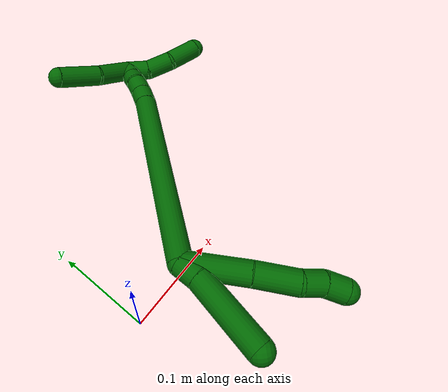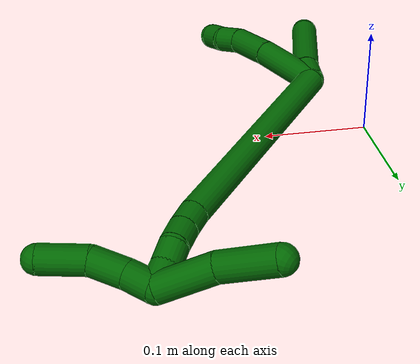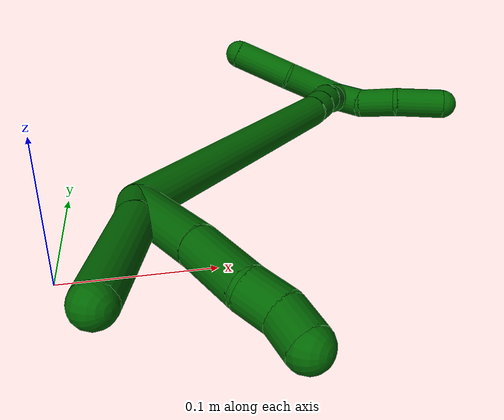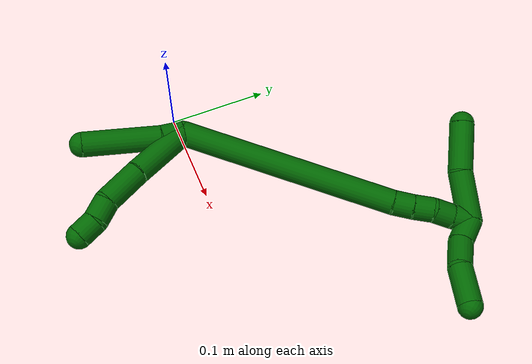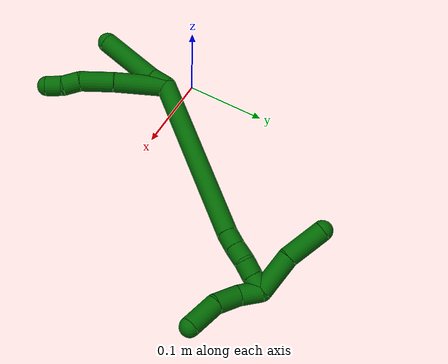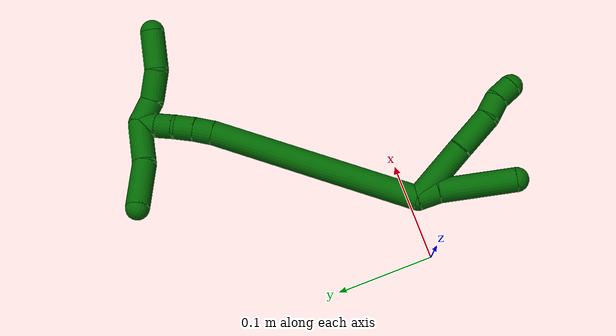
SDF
<sdf version="1.7">
 <world name="default">
  <model name="photoneo_s_sensor">
   <static>1</static>
   <pose>0 0 2 1.57079 1.57079 3.14159</pose>
   <link name="link">
    <inertial><mass>0.1</mass></inertial>
    <sensor name="sensor" type="depth">
     <update_rate>30</update_rate>
     <camera>
      <horizontal_fov>1.22</horizontal_fov>
      <image><width>1920</width><height>1200</height><format>B8G8R8</format></image>
      <clip><near>0.1</near><far>4</far></clip>
      <depth_camera><output>points</output></depth_camera>
     </camera>
     <plugin name="camera_plugin" filename="libgazebo_ros_depth_camera.so">
      <baseline>0.2</baseline>
      <alwaysOn>1</alwaysOn>
      <updateRate>0.0</updateRate>
      <cameraName>camera_ir</cameraName>
      <imageTopicName>/camera/color/image_raw</imageTopicName>
      <cameraInfoTopicName>/camera/color/camera_info</cameraInfoTopicName>
      <depthImageTopicName>/camera/depth/image_raw</depthImageTopicName>
      <depthImageCameraInfoTopicName>/camera/depth/camera_info</depthImageCameraInfoTopicName>
      <pointCloudTopicName>/camera/depth/points</pointCloudTopicName>
      <frameName>fr_optical</frameName>
      <pointCloudCutoff>0.1</pointCloudCutoff>
      <pointCloudCutoffMax>2.0</pointCloudCutoffMax>
      <distortionK1>0</distortionK1>
      <distortionK2>0</distortionK2>
      <distortionK3>0</distortionK3>
      <distortionT1>0</distortionT1>
      <distortionT2>0</distortionT2>
      <CxPrime>0</CxPrime>
      <Cx>0</Cx>
      <Cy>0</Cy>
      <focalLength>0</focalLength>
      <hackBaseline>0</hackBaseline>
     </plugin>
    </sensor>
   </link>
  </model>
  <model name="bin">
   <static>1</static>
   <link name="bottom">
    <collision name="collision-bottom">
     <pose>0 0 -0.01 0 -0 0</pose>
     <geometry><box><size>0.8 0.6 0.02</size></box></geometry>
     <surface>
      <friction><ode><mu>100</mu><mu2>100</mu2></ode></friction>
      <contact><collide_bitmask>65535</collide_bitmask></contact>
     </surface>
    </collision>
   </link>
   <link name="west_wall">
    <collision name="collision-west_wall">
     <pose>-0.41 0 0.1 0 -0 0</pose>
     <geometry><box><size>0.02 0.6 0.2</size></box></geometry>
     <surface>
      <friction><ode><mu>100</mu><mu2>100</mu2></ode></friction>
      <contact><collide_bitmask>65535</collide_bitmask></contact>
     </surface>
    </collision>
   </link>
   <link name="east_wall">
    <collision name="collision-east_wall">
     <pose>0.41 0 0.1 0 -0 0</pose>
     <geometry><box><size>0.02 0.6 0.2</size></box></geometry>
     <surface>
      <friction><ode><mu>100</mu><mu2>100</mu2></ode></friction>
      <contact><collide_bitmask>65535</collide_bitmask></contact>
     </surface>
    </collision>
   </link>
   <link name="south_wall">
    <collision name="collision-south_wall">
     <pose>0 -0.31 0.1 0 -0 0</pose>
     <geometry><box><size>0.8 0.02 0.2</size></box></geometry>
     <surface>
      <friction><ode><mu>100</mu><mu2>100</mu2></ode></friction>
      <contact><collide_bitmask>65535</collide_bitmask></contact>
     </surface>
    </collision>
   </link>
   <link name="north_wall">
    <collision name="collision-north_wall">
     <pose>0 0.31 0.1 0 -0 0</pose>
     <geometry><box><size>0.8 0.02 0.2</size></box></geometry>
     <surface>
      <friction><ode><mu>100</mu><mu2>100</mu2></ode></friction>
      <contact><collide_bitmask>65535</collide_bitmask></contact>
     </surface>
    </collision>
   </link>
  </model>
  <model name="6">
   <static>0</static>
   <link name="6">
    <collision name="collision-cylinder-e_1_2_8">
     <pose>-0.004176 -0.007581 0.031551 0.235822 -0.127997 -0.015183</pose>
     <geometry><cylinder><radius>0.0125</radius><length>0.065433</length></cylinder></geometry>
     <surface>
      <friction><ode><mu>1.16</mu><mu2>1.16</mu2><slip1>0</slip1><slip2>0</slip2></ode></friction>
      <contact><ode><kp>1e+06</kp><kd>1</kd><max_vel>0</max_vel><min_depth>0.001</min_depth></ode></contact>
     </surface>
    </collision>
    <visual name="visual-cylinder-e_1_2_8">
     <pose>-0.004176 -0.007581 0.031551 0.235822 -0.127997 -0.015183</pose>
     <geometry><cylinder><radius>0.0125</radius><length>0.065433</length></cylinder></geometry>
     <material><ambient>0 0.392157 0.003922 1</ambient></material>
    </visual>
    <collision name="collision-cylinder-e_2_8_9">
     <pose>-0.009587 -0.021378 0.083057 0.301934 -0.058994 -0.008977</pose>
     <geometry><cylinder><radius>0.0125</radius><length>0.041874</length></cylinder></geometry>
     <surface>
      <friction><ode><mu>1.16</mu><mu2>1.16</mu2><slip1>0</slip1><slip2>0</slip2></ode></friction>
      <contact><ode><kp>1e+06</kp><kd>1</kd><max_vel>0</max_vel><min_depth>0.001</min_depth></ode></contact>
     </surface>
    </collision>
    <visual name="visual-cylinder-e_2_8_9">
     <pose>-0.009587 -0.021378 0.083057 0.301934 -0.058994 -0.008977</pose>
     <geometry><cylinder><radius>0.0125</radius><length>0.041874</length></cylinder></geometry>
     <material><ambient>0 0.392157 0.003922 1</ambient></material>
    </visual>
    <collision name="collision-cylinder-e_3_9_10">
     <pose>-0.008432 -0.029932 0.113449 0.22041 0.219822 0.024421</pose>
     <geometry><cylinder><radius>0.0125</radius><length>0.021919</length></cylinder></geometry>
     <surface>
      <friction><ode><mu>1.16</mu><mu2>1.16</mu2><slip1>0</slip1><slip2>0</slip2></ode></friction>
      <contact><ode><kp>1e+06</kp><kd>1</kd><max_vel>0</max_vel><min_depth>0.001</min_depth></ode></contact>
     </surface>
    </collision>
    <visual name="visual-cylinder-e_3_9_10">
     <pose>-0.008432 -0.029932 0.113449 0.22041 0.219822 0.024421</pose>
     <geometry><cylinder><radius>0.0125</radius><length>0.021919</length></cylinder></geometry>
     <material><ambient>0 0.392157 0.003922 1</ambient></material>
    </visual>
    <collision name="collision-cylinder-e_4_10_6">
     <pose>-0.005834 -0.037172 0.133041 0.491649 0.020042 0.005029</pose>
     <geometry><cylinder><radius>0.0125</radius><length>0.020774</length></cylinder></geometry>
     <surface>
      <friction><ode><mu>1.16</mu><mu2>1.16</mu2><slip1>0</slip1><slip2>0</slip2></ode></friction>
      <contact><ode><kp>1e+06</kp><kd>1</kd><max_vel>0</max_vel><min_depth>0.001</min_depth></ode></contact>
     </surface>
    </collision>
    <visual name="visual-cylinder-e_4_10_6">
     <pose>-0.005834 -0.037172 0.133041 0.491649 0.020042 0.005029</pose>
     <geometry><cylinder><radius>0.0125</radius><length>0.020774</length></cylinder></geometry>
     <material><ambient>0 0.392157 0.003922 1</ambient></material>
    </visual>
    <collision name="collision-cylinder-e_1_2_11">
     <pose>-0.005249 -0.005946 0.007758 0.65394 -0.492842 -0.170199</pose>
     <geometry><cylinder><radius>0.0125</radius><length>0.02219</length></cylinder></geometry>
     <surface>
      <friction><ode><mu>1.16</mu><mu2>1.16</mu2><slip1>0</slip1><slip2>0</slip2></ode></friction>
      <contact><ode><kp>1e+06</kp><kd>1</kd><max_vel>0</max_vel><min_depth>0.001</min_depth></ode></contact>
     </surface>
    </collision>
    <visual name="visual-cylinder-e_1_2_11">
     <pose>-0.005249 -0.005946 0.007758 0.65394 -0.492842 -0.170199</pose>
     <geometry><cylinder><radius>0.0125</radius><length>0.02219</length></cylinder></geometry>
     <material><ambient>0 0.392157 0.003922 1</ambient></material>
    </visual>
    <collision name="collision-cylinder-e_2_11_5">
     <pose>-0.030839 -0.037215 0.036933 0.868777 -0.550144 -0.260393</pose>
     <geometry><cylinder><radius>0.0125</radius><length>0.07781</length></cylinder></geometry>
     <surface>
      <friction><ode><mu>1.16</mu><mu2>1.16</mu2><slip1>0</slip1><slip2>0</slip2></ode></friction>
      <contact><ode><kp>1e+06</kp><kd>1</kd><max_vel>0</max_vel><min_depth>0.001</min_depth></ode></contact>
     </surface>
    </collision>
    <visual name="visual-cylinder-e_2_11_5">
     <pose>-0.030839 -0.037215 0.036933 0.868777 -0.550144 -0.260393</pose>
     <geometry><cylinder><radius>0.0125</radius><length>0.07781</length></cylinder></geometry>
     <material><ambient>0 0.392157 0.003922 1</ambient></material>
    </visual>
    <collision name="collision-cylinder-e_1_2_12">
     <pose>0.076069 0.078043 -0.013893 -1.74696 0.764801 -0.895232</pose>
     <geometry><cylinder><radius>0.0125</radius><length>0.219729</length></cylinder></geometry>
     <surface>
      <friction><ode><mu>1.16</mu><mu2>1.16</mu2><slip1>0</slip1><slip2>0</slip2></ode></friction>
      <contact><ode><kp>1e+06</kp><kd>1</kd><max_vel>0</max_vel><min_depth>0.001</min_depth></ode></contact>
     </surface>
    </collision>
    <visual name="visual-cylinder-e_1_2_12">
     <pose>0.076069 0.078043 -0.013893 -1.74696 0.764801 -0.895232</pose>
     <geometry><cylinder><radius>0.0125</radius><length>0.219729</length></cylinder></geometry>
     <material><ambient>0 0.392157 0.003922 1</ambient></material>
    </visual>
    <collision name="collision-cylinder-e_2_12_13">
     <pose>0.158772 0.163187 -0.030162 -1.89377 0.724907 -0.969718</pose>
     <geometry><cylinder><radius>0.0125</radius><length>0.020009</length></cylinder></geometry>
     <surface>
      <friction><ode><mu>1.16</mu><mu2>1.16</mu2><slip1>0</slip1><slip2>0</slip2></ode></friction>
      <contact><ode><kp>1e+06</kp><kd>1</kd><max_vel>0</max_vel><min_depth>0.001</min_depth></ode></contact>
     </surface>
    </collision>
    <visual name="visual-cylinder-e_2_12_13">
     <pose>0.158772 0.163187 -0.030162 -1.89377 0.724907 -0.969718</pose>
     <geometry><cylinder><radius>0.0125</radius><length>0.020009</length></cylinder></geometry>
     <material><ambient>0 0.392157 0.003922 1</ambient></material>
    </visual>
    <collision name="collision-cylinder-e_3_13_14">
     <pose>0.171852 0.17731 -0.035632 -1.98569 0.698742 -1.01878</pose>
     <geometry><cylinder><radius>0.0125</radius><length>0.020041</length></cylinder></geometry>
     <surface>
      <friction><ode><mu>1.16</mu><mu2>1.16</mu2><slip1>0</slip1><slip2>0</slip2></ode></friction>
      <contact><ode><kp>1e+06</kp><kd>1</kd><max_vel>0</max_vel><min_depth>0.001</min_depth></ode></contact>
     </surface>
    </collision>
    <visual name="visual-cylinder-e_3_13_14">
     <pose>0.171852 0.17731 -0.035632 -1.98569 0.698742 -1.01878</pose>
     <geometry><cylinder><radius>0.0125</radius><length>0.020041</length></cylinder></geometry>
     <material><ambient>0 0.392157 0.003922 1</ambient></material>
    </visual>
    <collision name="collision-cylinder-e_4_14_15">
     <pose>0.186491 0.189121 -0.041904 -2.15685 0.958953 -1.53957</pose>
     <geometry><cylinder><radius>0.0125</radius><length>0.020018</length></cylinder></geometry>
     <surface>
      <friction><ode><mu>1.16</mu><mu2>1.16</mu2><slip1>0</slip1><slip2>0</slip2></ode></friction>
      <contact><ode><kp>1e+06</kp><kd>1</kd><max_vel>0</max_vel><min_depth>0.001</min_depth></ode></contact>
     </surface>
    </collision>
    <visual name="visual-cylinder-e_4_14_15">
     <pose>0.186491 0.189121 -0.041904 -2.15685 0.958953 -1.53957</pose>
     <geometry><cylinder><radius>0.0125</radius><length>0.020018</length></cylinder></geometry>
     <material><ambient>0 0.392157 0.003922 1</ambient></material>
    </visual>
    <collision name="collision-cylinder-e_5_15_1">
     <pose>0.202345 0.199618 -0.048367 -2.09281 0.860851 -1.34188</pose>
     <geometry><cylinder><radius>0.0125</radius><length>0.020203</length></cylinder></geometry>
     <surface>
      <friction><ode><mu>1.16</mu><mu2>1.16</mu2><slip1>0</slip1><slip2>0</slip2></ode></friction>
      <contact><ode><kp>1e+06</kp><kd>1</kd><max_vel>0</max_vel><min_depth>0.001</min_depth></ode></contact>
     </surface>
    </collision>
    <visual name="visual-cylinder-e_5_15_1">
     <pose>0.202345 0.199618 -0.048367 -2.09281 0.860851 -1.34188</pose>
     <geometry><cylinder><radius>0.0125</radius><length>0.020203</length></cylinder></geometry>
     <material><ambient>0 0.392157 0.003922 1</ambient></material>
    </visual>
    <collision name="collision-cylinder-e_1_1_16">
     <pose>0.192142 0.203161 -0.068845 3.0164 -0.800546 -2.84746</pose>
     <geometry><cylinder><radius>0.0125</radius><length>0.04978</length></cylinder></geometry>
     <surface>
      <friction><ode><mu>1.16</mu><mu2>1.16</mu2><slip1>0</slip1><slip2>0</slip2></ode></friction>
      <contact><ode><kp>1e+06</kp><kd>1</kd><max_vel>0</max_vel><min_depth>0.001</min_depth></ode></contact>
     </surface>
    </collision>
    <visual name="visual-cylinder-e_1_1_16">
     <pose>0.192142 0.203161 -0.068845 3.0164 -0.800546 -2.84746</pose>
     <geometry><cylinder><radius>0.0125</radius><length>0.04978</length></cylinder></geometry>
     <material><ambient>0 0.392157 0.003922 1</ambient></material>
    </visual>
    <collision name="collision-cylinder-e_2_16_4">
     <pose>0.160529 0.201695 -0.107041 -3.10834 -0.579387 3.03014</pose>
     <geometry><cylinder><radius>0.0125</radius><length>0.05022</length></cylinder></geometry>
     <surface>
      <friction><ode><mu>1.16</mu><mu2>1.16</mu2><slip1>0</slip1><slip2>0</slip2></ode></friction>
      <contact><ode><kp>1e+06</kp><kd>1</kd><max_vel>0</max_vel><min_depth>0.001</min_depth></ode></contact>
     </surface>
    </collision>
    <visual name="visual-cylinder-e_2_16_4">
     <pose>0.160529 0.201695 -0.107041 -3.10834 -0.579387 3.03014</pose>
     <geometry><cylinder><radius>0.0125</radius><length>0.05022</length></cylinder></geometry>
     <material><ambient>0 0.392157 0.003922 1</ambient></material>
    </visual>
    <collision name="collision-cylinder-e_1_1_17">
     <pose>0.211212 0.204122 -0.038227 0.089396 0.089222 0.003993</pose>
     <geometry><cylinder><radius>0.0125</radius><length>0.027061</length></cylinder></geometry>
     <surface>
      <friction><ode><mu>1.16</mu><mu2>1.16</mu2><slip1>0</slip1><slip2>0</slip2></ode></friction>
      <contact><ode><kp>1e+06</kp><kd>1</kd><max_vel>0</max_vel><min_depth>0.001</min_depth></ode></contact>
     </surface>
    </collision>
    <visual name="visual-cylinder-e_1_1_17">
     <pose>0.211212 0.204122 -0.038227 0.089396 0.089222 0.003993</pose>
     <geometry><cylinder><radius>0.0125</radius><length>0.027061</length></cylinder></geometry>
     <material><ambient>0 0.392157 0.003922 1</ambient></material>
    </visual>
    <collision name="collision-cylinder-e_2_17_18">
     <pose>0.214601 0.206928 -0.009501 -0.256227 0.13719 -0.0177</pose>
     <geometry><cylinder><radius>0.0125</radius><length>0.03194</length></cylinder></geometry>
     <surface>
      <friction><ode><mu>1.16</mu><mu2>1.16</mu2><slip1>0</slip1><slip2>0</slip2></ode></friction>
      <contact><ode><kp>1e+06</kp><kd>1</kd><max_vel>0</max_vel><min_depth>0.001</min_depth></ode></contact>
     </surface>
    </collision>
    <visual name="visual-cylinder-e_2_17_18">
     <pose>0.214601 0.206928 -0.009501 -0.256227 0.13719 -0.0177</pose>
     <geometry><cylinder><radius>0.0125</radius><length>0.03194</length></cylinder></geometry>
     <material><ambient>0 0.392157 0.003922 1</ambient></material>
    </visual>
    <collision name="collision-cylinder-e_3_18_3">
     <pose>0.225755 0.217925 0.02286 -0.388838 0.452879 -0.090668</pose>
     <geometry><cylinder><radius>0.0125</radius><length>0.040999</length></cylinder></geometry>
     <surface>
      <friction><ode><mu>1.16</mu><mu2>1.16</mu2><slip1>0</slip1><slip2>0</slip2></ode></friction>
      <contact><ode><kp>1e+06</kp><kd>1</kd><max_vel>0</max_vel><min_depth>0.001</min_depth></ode></contact>
     </surface>
    </collision>
    <visual name="visual-cylinder-e_3_18_3">
     <pose>0.225755 0.217925 0.02286 -0.388838 0.452879 -0.090668</pose>
     <geometry><cylinder><radius>0.0125</radius><length>0.040999</length></cylinder></geometry>
     <material><ambient>0 0.392157 0.003922 1</ambient></material>
    </visual>
    <collision name="collision-sphere-3">
     <pose>0.234725 0.224914 0.039917 0 -0 0</pose>
     <geometry><sphere><radius>0.0125</radius></sphere></geometry>
     <surface>
      <friction><ode><mu>1.16</mu><mu2>1.16</mu2><slip1>0</slip1><slip2>0</slip2></ode></friction>
      <contact><ode><kp>1e+06</kp><kd>1</kd><max_vel>0</max_vel><min_depth>0.001</min_depth></ode></contact>
     </surface>
    </collision>
    <visual name="visual-sphere-3">
     <pose>0.234725 0.224914 0.039917 0 -0 0</pose>
     <geometry><sphere><radius>0.0125</radius></sphere></geometry>
     <material><ambient>0 0.392157 0.003922 1</ambient></material>
    </visual>
    <collision name="collision-sphere-11">
     <pose>-0.010499 -0.011892 0.015516 0 -0 0</pose>
     <geometry><sphere><radius>0.0125</radius></sphere></geometry>
     <surface>
      <friction><ode><mu>1.16</mu><mu2>1.16</mu2><slip1>0</slip1><slip2>0</slip2></ode></friction>
      <contact><ode><kp>1e+06</kp><kd>1</kd><max_vel>0</max_vel><min_depth>0.001</min_depth></ode></contact>
     </surface>
    </collision>
    <visual name="visual-sphere-11">
     <pose>-0.010499 -0.011892 0.015516 0 -0 0</pose>
     <geometry><sphere><radius>0.0125</radius></sphere></geometry>
     <material><ambient>0 0.392157 0.003922 1</ambient></material>
    </visual>
    <collision name="collision-sphere-6">
     <pose>-0.005625 -0.042075 0.142196 0 -0 0</pose>
     <geometry><sphere><radius>0.0125</radius></sphere></geometry>
     <surface>
      <friction><ode><mu>1.16</mu><mu2>1.16</mu2><slip1>0</slip1><slip2>0</slip2></ode></friction>
      <contact><ode><kp>1e+06</kp><kd>1</kd><max_vel>0</max_vel><min_depth>0.001</min_depth></ode></contact>
     </surface>
    </collision>
    <visual name="visual-sphere-6">
     <pose>-0.005625 -0.042075 0.142196 0 -0 0</pose>
     <geometry><sphere><radius>0.0125</radius></sphere></geometry>
     <material><ambient>0 0.392157 0.003922 1</ambient></material>
    </visual>
    <collision name="collision-sphere-10">
     <pose>-0.006042 -0.03227 0.123886 0 -0 0</pose>
     <geometry><sphere><radius>0.0125</radius></sphere></geometry>
     <surface>
      <friction><ode><mu>1.16</mu><mu2>1.16</mu2><slip1>0</slip1><slip2>0</slip2></ode></friction>
      <contact><ode><kp>1e+06</kp><kd>1</kd><max_vel>0</max_vel><min_depth>0.001</min_depth></ode></contact>
     </surface>
    </collision>
    <visual name="visual-sphere-10">
     <pose>-0.006042 -0.03227 0.123886 0 -0 0</pose>
     <geometry><sphere><radius>0.0125</radius></sphere></geometry>
     <material><ambient>0 0.392157 0.003922 1</ambient></material>
    </visual>
    <collision name="collision-sphere-9">
     <pose>-0.010821 -0.027593 0.103012 0 -0 0</pose>
     <geometry><sphere><radius>0.0125</radius></sphere></geometry>
     <surface>
      <friction><ode><mu>1.16</mu><mu2>1.16</mu2><slip1>0</slip1><slip2>0</slip2></ode></friction>
      <contact><ode><kp>1e+06</kp><kd>1</kd><max_vel>0</max_vel><min_depth>0.001</min_depth></ode></contact>
     </surface>
    </collision>
    <visual name="visual-sphere-9">
     <pose>-0.010821 -0.027593 0.103012 0 -0 0</pose>
     <geometry><sphere><radius>0.0125</radius></sphere></geometry>
     <material><ambient>0 0.392157 0.003922 1</ambient></material>
    </visual>
    <collision name="collision-sphere-2">
     <geometry><sphere><radius>0.0125</radius></sphere></geometry>
     <surface>
      <friction><ode><mu>1.16</mu><mu2>1.16</mu2><slip1>0</slip1><slip2>0</slip2></ode></friction>
      <contact><ode><kp>1e+06</kp><kd>1</kd><max_vel>0</max_vel><min_depth>0.001</min_depth></ode></contact>
     </surface>
    </collision>
    <visual name="visual-sphere-2">
     <geometry><sphere><radius>0.0125</radius></sphere></geometry>
     <material><ambient>0 0.392157 0.003922 1</ambient></material>
    </visual>
    <collision name="collision-sphere-8">
     <pose>-0.008352 -0.015163 0.063102 0 -0 0</pose>
     <geometry><sphere><radius>0.0125</radius></sphere></geometry>
     <surface>
      <friction><ode><mu>1.16</mu><mu2>1.16</mu2><slip1>0</slip1><slip2>0</slip2></ode></friction>
      <contact><ode><kp>1e+06</kp><kd>1</kd><max_vel>0</max_vel><min_depth>0.001</min_depth></ode></contact>
     </surface>
    </collision>
    <visual name="visual-sphere-8">
     <pose>-0.008352 -0.015163 0.063102 0 -0 0</pose>
     <geometry><sphere><radius>0.0125</radius></sphere></geometry>
     <material><ambient>0 0.392157 0.003922 1</ambient></material>
    </visual>
    <collision name="collision-sphere-5">
     <pose>-0.051179 -0.062537 0.058349 0 -0 0</pose>
     <geometry><sphere><radius>0.0125</radius></sphere></geometry>
     <surface>
      <friction><ode><mu>1.16</mu><mu2>1.16</mu2><slip1>0</slip1><slip2>0</slip2></ode></friction>
      <contact><ode><kp>1e+06</kp><kd>1</kd><max_vel>0</max_vel><min_depth>0.001</min_depth></ode></contact>
     </surface>
    </collision>
    <visual name="visual-sphere-5">
     <pose>-0.051179 -0.062537 0.058349 0 -0 0</pose>
     <geometry><sphere><radius>0.0125</radius></sphere></geometry>
     <material><ambient>0 0.392157 0.003922 1</ambient></material>
    </visual>
    <collision name="collision-sphere-12">
     <pose>0.152139 0.156085 -0.027785 0 -0 0</pose>
     <geometry><sphere><radius>0.0125</radius></sphere></geometry>
     <surface>
      <friction><ode><mu>1.16</mu><mu2>1.16</mu2><slip1>0</slip1><slip2>0</slip2></ode></friction>
      <contact><ode><kp>1e+06</kp><kd>1</kd><max_vel>0</max_vel><min_depth>0.001</min_depth></ode></contact>
     </surface>
    </collision>
    <visual name="visual-sphere-12">
     <pose>0.152139 0.156085 -0.027785 0 -0 0</pose>
     <geometry><sphere><radius>0.0125</radius></sphere></geometry>
     <material><ambient>0 0.392157 0.003922 1</ambient></material>
    </visual>
    <collision name="collision-sphere-13">
     <pose>0.165406 0.170289 -0.032539 0 -0 0</pose>
     <geometry><sphere><radius>0.0125</radius></sphere></geometry>
     <surface>
      <friction><ode><mu>1.16</mu><mu2>1.16</mu2><slip1>0</slip1><slip2>0</slip2></ode></friction>
      <contact><ode><kp>1e+06</kp><kd>1</kd><max_vel>0</max_vel><min_depth>0.001</min_depth></ode></contact>
     </surface>
    </collision>
    <visual name="visual-sphere-13">
     <pose>0.165406 0.170289 -0.032539 0 -0 0</pose>
     <geometry><sphere><radius>0.0125</radius></sphere></geometry>
     <material><ambient>0 0.392157 0.003922 1</ambient></material>
    </visual>
    <collision name="collision-sphere-14">
     <pose>0.178298 0.184331 -0.038724 0 -0 0</pose>
     <geometry><sphere><radius>0.0125</radius></sphere></geometry>
     <surface>
      <friction><ode><mu>1.16</mu><mu2>1.16</mu2><slip1>0</slip1><slip2>0</slip2></ode></friction>
      <contact><ode><kp>1e+06</kp><kd>1</kd><max_vel>0</max_vel><min_depth>0.001</min_depth></ode></contact>
     </surface>
    </collision>
    <visual name="visual-sphere-14">
     <pose>0.178298 0.184331 -0.038724 0 -0 0</pose>
     <geometry><sphere><radius>0.0125</radius></sphere></geometry>
     <material><ambient>0 0.392157 0.003922 1</ambient></material>
    </visual>
    <collision name="collision-sphere-15">
     <pose>0.194684 0.193911 -0.045084 0 -0 0</pose>
     <geometry><sphere><radius>0.0125</radius></sphere></geometry>
     <surface>
      <friction><ode><mu>1.16</mu><mu2>1.16</mu2><slip1>0</slip1><slip2>0</slip2></ode></friction>
      <contact><ode><kp>1e+06</kp><kd>1</kd><max_vel>0</max_vel><min_depth>0.001</min_depth></ode></contact>
     </surface>
    </collision>
    <visual name="visual-sphere-15">
     <pose>0.194684 0.193911 -0.045084 0 -0 0</pose>
     <geometry><sphere><radius>0.0125</radius></sphere></geometry>
     <material><ambient>0 0.392157 0.003922 1</ambient></material>
    </visual>
    <collision name="collision-sphere-1">
     <pose>0.210006 0.205325 -0.05165 0 -0 0</pose>
     <geometry><sphere><radius>0.0125</radius></sphere></geometry>
     <surface>
      <friction><ode><mu>1.16</mu><mu2>1.16</mu2><slip1>0</slip1><slip2>0</slip2></ode></friction>
      <contact><ode><kp>1e+06</kp><kd>1</kd><max_vel>0</max_vel><min_depth>0.001</min_depth></ode></contact>
     </surface>
    </collision>
    <visual name="visual-sphere-1">
     <pose>0.210006 0.205325 -0.05165 0 -0 0</pose>
     <geometry><sphere><radius>0.0125</radius></sphere></geometry>
     <material><ambient>0 0.392157 0.003922 1</ambient></material>
    </visual>
    <collision name="collision-sphere-18">
     <pose>0.216785 0.210937 0.005803 0 -0 0</pose>
     <geometry><sphere><radius>0.0125</radius></sphere></geometry>
     <surface>
      <friction><ode><mu>1.16</mu><mu2>1.16</mu2><slip1>0</slip1><slip2>0</slip2></ode></friction>
      <contact><ode><kp>1e+06</kp><kd>1</kd><max_vel>0</max_vel><min_depth>0.001</min_depth></ode></contact>
     </surface>
    </collision>
    <visual name="visual-sphere-18">
     <pose>0.216785 0.210937 0.005803 0 -0 0</pose>
     <geometry><sphere><radius>0.0125</radius></sphere></geometry>
     <material><ambient>0 0.392157 0.003922 1</ambient></material>
    </visual>
    <collision name="collision-sphere-16">
     <pose>0.174277 0.200997 -0.086041 0 -0 0</pose>
     <geometry><sphere><radius>0.0125</radius></sphere></geometry>
     <surface>
      <friction><ode><mu>1.16</mu><mu2>1.16</mu2><slip1>0</slip1><slip2>0</slip2></ode></friction>
      <contact><ode><kp>1e+06</kp><kd>1</kd><max_vel>0</max_vel><min_depth>0.001</min_depth></ode></contact>
     </surface>
    </collision>
    <visual name="visual-sphere-16">
     <pose>0.174277 0.200997 -0.086041 0 -0 0</pose>
     <geometry><sphere><radius>0.0125</radius></sphere></geometry>
     <material><ambient>0 0.392157 0.003922 1</ambient></material>
    </visual>
    <collision name="collision-sphere-4">
     <pose>0.146781 0.202394 -0.128042 0 -0 0</pose>
     <geometry><sphere><radius>0.0125</radius></sphere></geometry>
     <surface>
      <friction><ode><mu>1.16</mu><mu2>1.16</mu2><slip1>0</slip1><slip2>0</slip2></ode></friction>
      <contact><ode><kp>1e+06</kp><kd>1</kd><max_vel>0</max_vel><min_depth>0.001</min_depth></ode></contact>
     </surface>
    </collision>
    <visual name="visual-sphere-4">
     <pose>0.146781 0.202394 -0.128042 0 -0 0</pose>
     <geometry><sphere><radius>0.0125</radius></sphere></geometry>
     <material><ambient>0 0.392157 0.003922 1</ambient></material>
    </visual>
    <collision name="collision-sphere-17">
     <pose>0.212417 0.202919 -0.024804 0 -0 0</pose>
     <geometry><sphere><radius>0.0125</radius></sphere></geometry>
     <surface>
      <friction><ode><mu>1.16</mu><mu2>1.16</mu2><slip1>0</slip1><slip2>0</slip2></ode></friction>
      <contact><ode><kp>1e+06</kp><kd>1</kd><max_vel>0</max_vel><min_depth>0.001</min_depth></ode></contact>
     </surface>
    </collision>
    <visual name="visual-sphere-17">
     <pose>0.212417 0.202919 -0.024804 0 -0 0</pose>
     <geometry><sphere><radius>0.0125</radius></sphere></geometry>
     <material><ambient>0 0.392157 0.003922 1</ambient></material>
    </visual>
    <inertial>
     <pose>0.089483 0.089665 -0.002068 0 -0 0</pose>
     <mass>0.75</mass>
     <inertia>
      <ixx>-3.7e-05</ixx>
      <ixy>0</ixy>
      <ixz>0</ixz>
      <iyy>-2.4e-05</iyy>
      <iyz>0</iyz>
      <izz>-0.001174</izz>
     </inertia>
    </inertial>
   </link>
   <pose>0.055331 -0.004983 0.054635 1.35795 0.884401 0.594959</pose>
  </model>
 </world>
</sdf>
